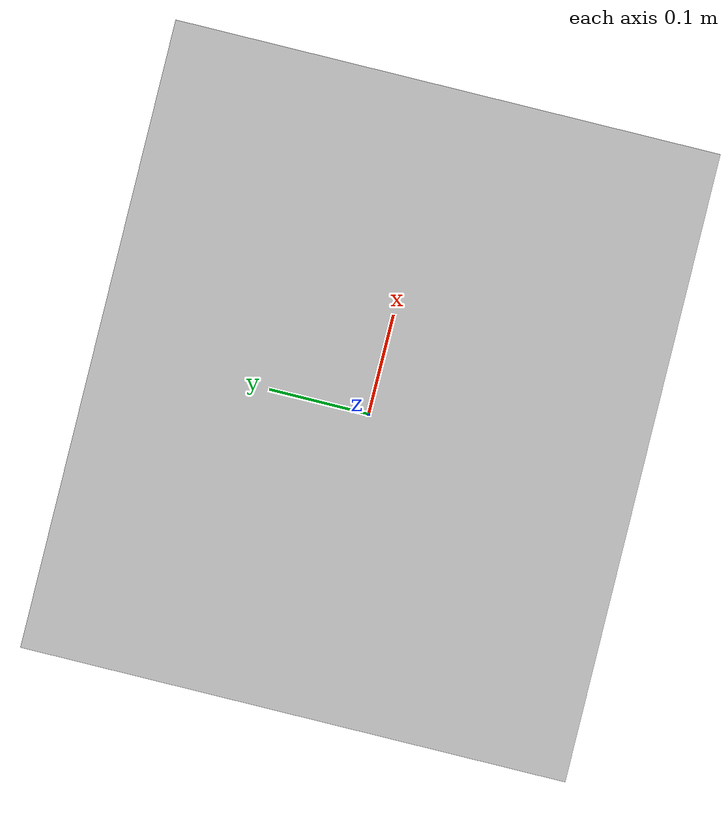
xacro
<?xml version="1.0" ?>
<robot name="amr_enclosure_design_completed" xmlns:xacro="http://www.ros.org/wiki/xacro">

<xacro:include filename="$(find amr_enclosure_design_completed_description)/urdf/materials.xacro" />
<xacro:include filename="$(find amr_enclosure_design_completed_description)/urdf/amr_enclosure_design_completed.trans" />
<xacro:include filename="$(find amr_enclosure_design_completed_description)/urdf/amr_enclosure_design_completed.gazebo" />
<link name="base_link">
  <inertial>
    <origin xyz="0.012987500466732187 0.001871064981612833 0.1170529270375456" rpy="0 0 0"/>
    <mass value="6.701670598492796"/>
    <inertia ixx="0.137922" iyy="0.18314" izz="0.321052" ixy="-0.0" iyz="-0.0" ixz="-0.0"/>
  </inertial>
  <visual>
    <origin xyz="0 0 0" rpy="0 0 0"/>
    <geometry>
      <mesh filename="file://$(find amr_enclosure_design_completed_description)/meshes/base_link.stl" scale="0.001 0.001 0.001"/>
    </geometry>
    <material name="silver"/>
  </visual>
  <collision>
    <origin xyz="0 0 0" rpy="0 0 0"/>
    <geometry>
      <mesh filename="file://$(find amr_enclosure_design_completed_description)/meshes/base_link.stl" scale="0.001 0.001 0.001"/>
    </geometry>
  </collision>
</link>

</robot>

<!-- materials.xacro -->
<robot name="amr_enclosure_design_completed" xmlns:xacro="http://www.ros.org/wiki/xacro" >

<material name="silver">
  <color rgba="0.700 0.700 0.700 1.000"/>
</material>

</robot>

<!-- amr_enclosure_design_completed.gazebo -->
<robot name="amr_enclosure_design_completed" xmlns:xacro="http://www.ros.org/wiki/xacro" >

<xacro:property name="body_color" value="Gazebo/Silver" />

<gazebo>
  <plugin name="control" filename="libgazebo_ros_control.so"/>
</gazebo>
<gazebo reference="base_link">
  <material>${body_color}</material>
  <mu1>0.2</mu1>
  <mu2>0.2</mu2>
  <self_collide>true</self_collide>
  <gravity>true</gravity>
</gazebo>

</robot>
